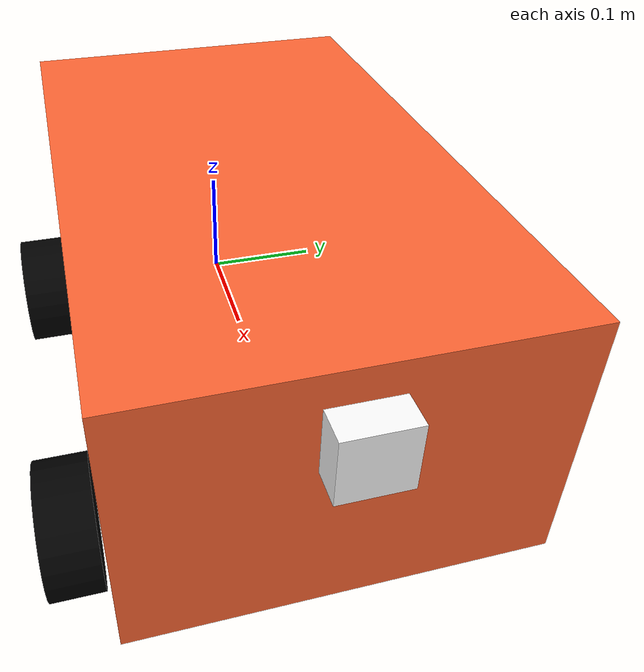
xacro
<?xml version="1.0"?>
<robot xmlns:xacro="http://www.ros.org/wiki/xacro" >

    <xacro:include filename="inertial_macros.xacro" />

    <material name="white">
        <color rgba="1 1 1 1"/>
    </material>

    <material name="blue">
        <color rgba="1 0.3 0.1 1"/>
    </material>

    <material name="blurrywood">
        <color rgba="1 0.4 0.2 1"/>
    </material>

    <material name="black">
        <color rgba="0 0 0 1"/>
    </material>

    <material name="orange">
        <color rgba="1 0.3 0.1 1"/>
    </material>

    <material name="red">
        <color rgba="1 0 0 1"/>
    </material>

    <!--BASE LINK-->

    <link name="base_link">

    </link>

    <!-- BASE FOOTPRINT -->

    <joint name="base_footprint_joint" type="fixed">
        <parent link="base_link"/>
        <child link="base_footprint"/>
        <origin xyz="0 0 0" rpy="0 0 0"/>
    </joint>

    <link name="base_footprint">
    </link>

    <!--CHASSIS LINK-->

    <joint name="chassis_joint" type="fixed">
        <parent link="base_link"/>
        <child link="chassis"/>
        <origin xyz="-0.1 0 0"/>
    </joint>

    <link name="chassis">
        <visual>
            <origin xyz="0.25 0 0.1" />
            <geometry>
                <box size="0.5 0.3 0.2" />
            </geometry>
            <material name="blurrywood" />
        </visual>
        <collision>
            <origin xyz="0.25 0 0.1" />
            <geometry>
                <box size="0.5 0.3 0.2" />
            </geometry>
        </collision>
        <xacro:inertial_box mass="0.5" x="0.5" y="0.3" z="0.2">
            <origin xyz="0.25 0 0.1" rpy="0 0 0"/>
        </xacro:inertial_box>
    </link>

    <gazebo reference="chassis">
        <material>
            Gazebo/Red
        </material>
    </gazebo>

    <!-- LEFT WHEEL LINK-->

    <joint name="left_wheel_joint" type="continuous">
        <parent link="base_link" />
        <child link="left_wheel" />
        <origin xyz="0 0.175 0" rpy="-${pi/2} 0 0" />
        <axis xyz="0 0 1"/>
    </joint>

    <link name="left_wheel">
        <visual>
            <geometry>
                <cylinder radius="0.05" length="0.04" />
            </geometry>
            <material name="black" />
        </visual>
        <collision>
            <geometry>
                <sphere radius="0.05" />
            </geometry>
        </collision>
        <xacro:inertial_cylinder mass="0.1" length="0.04" radius="0.05">
            <origin xyz="0 0 0" rpy="0 0 0"/>
        </xacro:inertial_cylinder>
    </link>

    <gazebo reference="left_wheel">
        <material>
            Gazebo/Black
        </material>
    </gazebo>

    <!-- RIGHT WHEEL LINK-->

    <joint name="right_wheel_joint" type="continuous">
        <parent link="base_link" />
        <child link="right_wheel" />
        <origin xyz="0 -0.175 0" rpy="${pi/2} 0 0" />
        <axis xyz="0 0 -1"/>
    </joint>

    <link name="right_wheel">
        <visual>
            <geometry>
                <cylinder radius="0.05" length="0.04" />
            </geometry>
            <material name="black" />
        </visual>
        <collision>
            <geometry>
                <sphere radius="0.05" />
            </geometry>
        </collision>
        <xacro:inertial_cylinder mass="0.1" length="0.04" radius="0.05">
            <origin xyz="0 0 0" rpy="0 0 0"/>
        </xacro:inertial_cylinder>
    </link>

    <gazebo reference="right_wheel">
        <material>
            Gazebo/Black
        </material>
    </gazebo>

    <!-- LEFT CASTER WHEELS LINK-->

    <joint name="left_caster_wheel_joint" type="fixed">
        <parent link="chassis" />
        <child link="left_caster_wheel" />
        <origin xyz="0.4 0.175 0" rpy="-${pi/2} 0 0"/>
        <axis xyz="0 0 1"/>
    </joint>

    <link name="left_caster_wheel">
        <visual>
            <geometry>
                <cylinder radius="0.05" length="0.04"/>
            </geometry>
            <material name="black" />
        </visual>
        <collision>
            <geometry>
                <cylinder radius="0.05" length="0.04"/>
            </geometry>
        </collision>
        <xacro:inertial_cylinder mass="0.1" length="0.04" radius="0.05">
            <origin xyz="0 0 0" rpy="0 0 0"/>
        </xacro:inertial_cylinder>
    </link>

    <gazebo reference="left_caster_wheel">
        <material>
            Gazebo/Black
        </material>
        <mu1 value="0.01" />
        <mu2 value="0.01" />
    </gazebo>

        <!-- RIGHT CASTER WHEELS LINK-->

        <joint name="right_caster_wheel_joint" type="fixed">
            <parent link="chassis" />
            <child link="right_caster_wheel" />
            <origin xyz="0.4 -0.175 0" rpy="${pi/2} 0 0"/>
            <axis xyz="0 0 -1"/>
        </joint>

        <link name="right_caster_wheel">
            <visual>
                <geometry>
                    <cylinder radius="0.05" length="0.04"/>
                </geometry>
                <material name="black" />
            </visual>
            <collision>
                <geometry>
                    <cylinder radius="0.05" length="0.04"/>
                </geometry>
            </collision>
            <xacro:inertial_cylinder mass="0.1" length="0.04" radius="0.05">
                <origin xyz="0 0 0" rpy="0 0 0"/>
            </xacro:inertial_cylinder>
        </link>

        <gazebo reference="right_caster_wheel">
            <material>
                Gazebo/Black
            </material>
            <mu1 value="0.01" />
            <mu2 value="0.01" />
        </gazebo>

    <joint name="realsense_joint" type="fixed">
        <parent link="chassis"/>
        <child link="realsense_link"/>
        <origin xyz="0.5 0 0.15" rpy="0 0 0"/>
    </joint>

    <link name="realsense_link">
        <visual>
            <geometry>
                <box size="0.05 0.05 0.05"/>
            </geometry>
            <material name="white"/>
        </visual>
    </link>

    <!-- Optical frame -->
    <joint name="realsense_optical_joint" type="fixed">
        <parent link="realsense_link"/>
        <child link="realsense_optical_link"/>
        <origin xyz="0 0 0" rpy="${-pi/2} 0 ${-pi/2}"/>
    </joint>

    <link name="realsense_optical_link">
        <inertial>
            <mass value="0.1"/>
            <origin xyz="0 0 0"/>
            <inertia ixx="0.001" iyy="0.001" izz="0.001"
           ixy="0" ixz="0" iyz="0"/>
        </inertial>
    </link>

    <!-- Gazebo sensor + plugin -->
    <gazebo reference="realsense_link">
        <material>Gazebo/White</material>

        <plugin name="realsense_plugin" filename="librealsense_gazebo_plugin.so">
            <prefix>camera</prefix>

            <depthUpdateRate>30.0</depthUpdateRate>
            <colorUpdateRate>30.0</colorUpdateRate>

            <depthTopicName>aligned_depth_to_color/image_raw</depthTopicName>
            <colorTopicName>color/image_raw</colorTopicName>

            <pointCloud>true</pointCloud>
            <pointCloudTopicName>depth/color/points</pointCloudTopicName>

            <colorOpticalframeName>realsense_optical_link</colorOpticalframeName>
            <depthOpticalframeName>realsense_optical_link</depthOpticalframeName>

            <rangeMinDepth>0.3</rangeMinDepth>
            <rangeMaxDepth>5.0</rangeMaxDepth>

        </plugin>
    </gazebo>

</robot>
